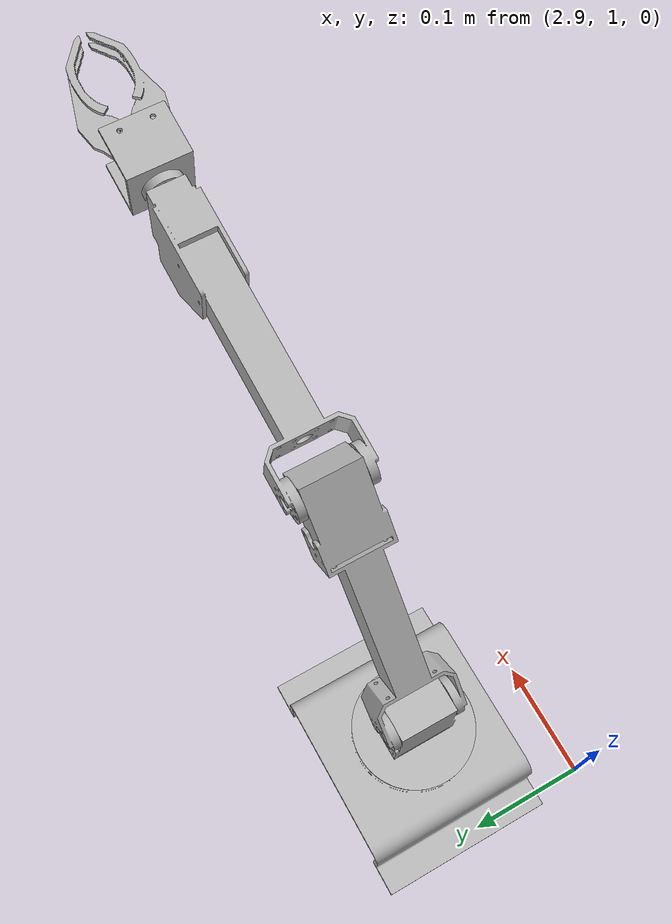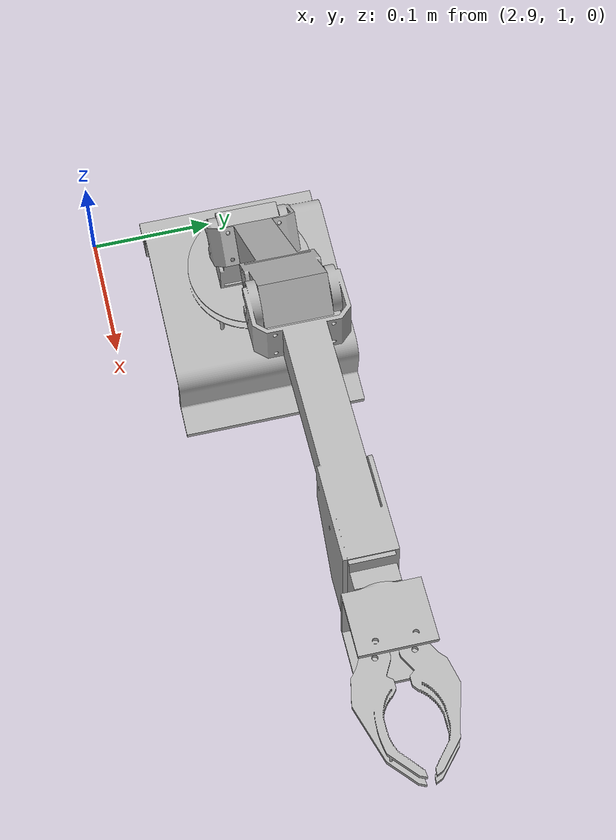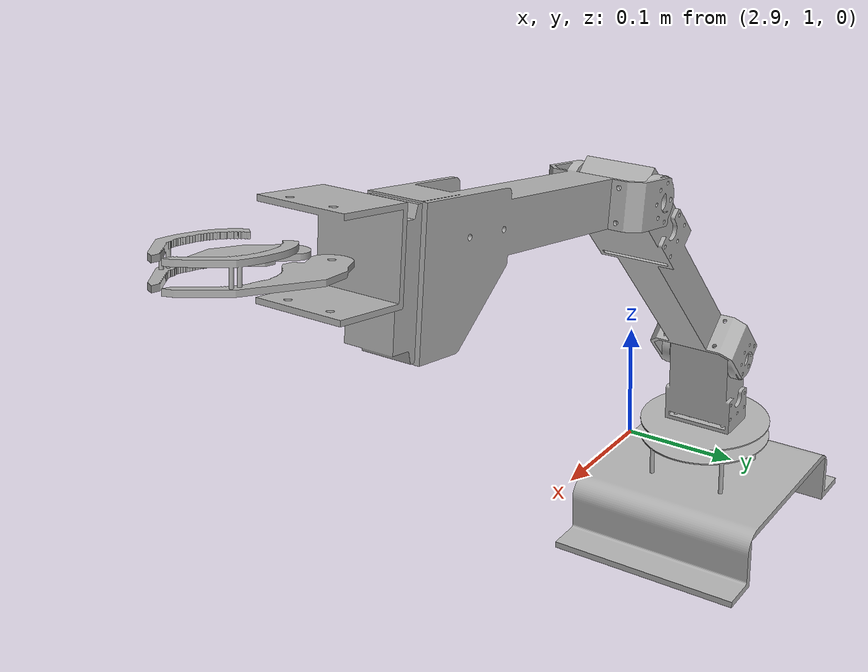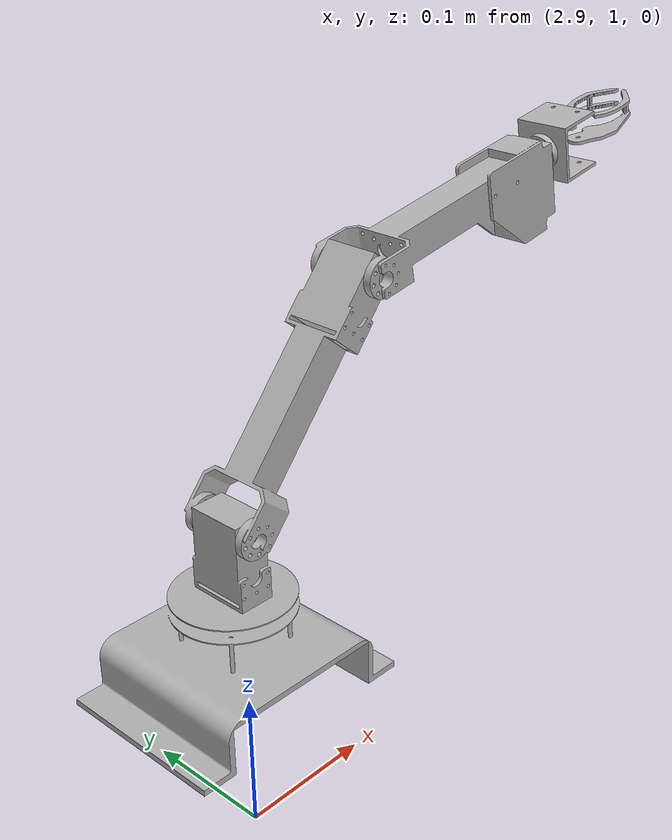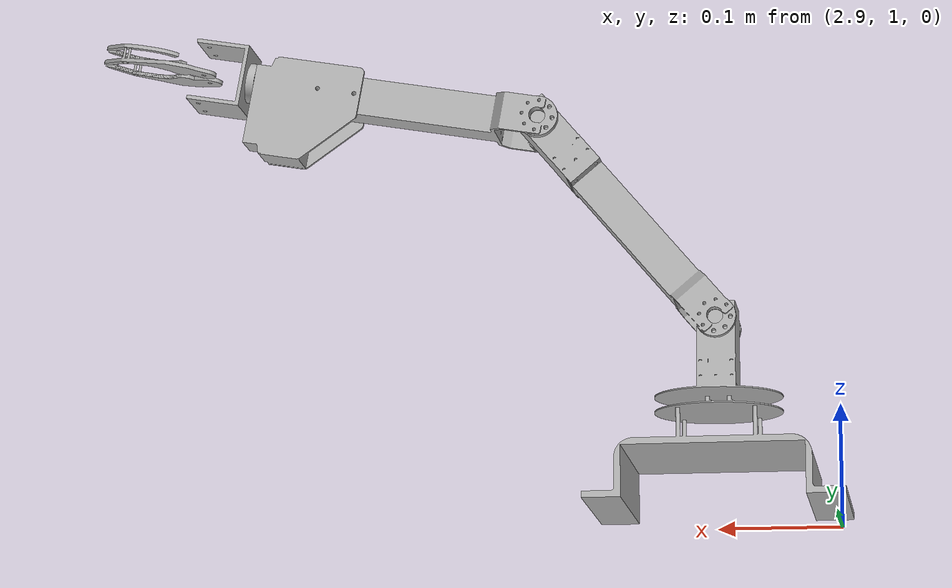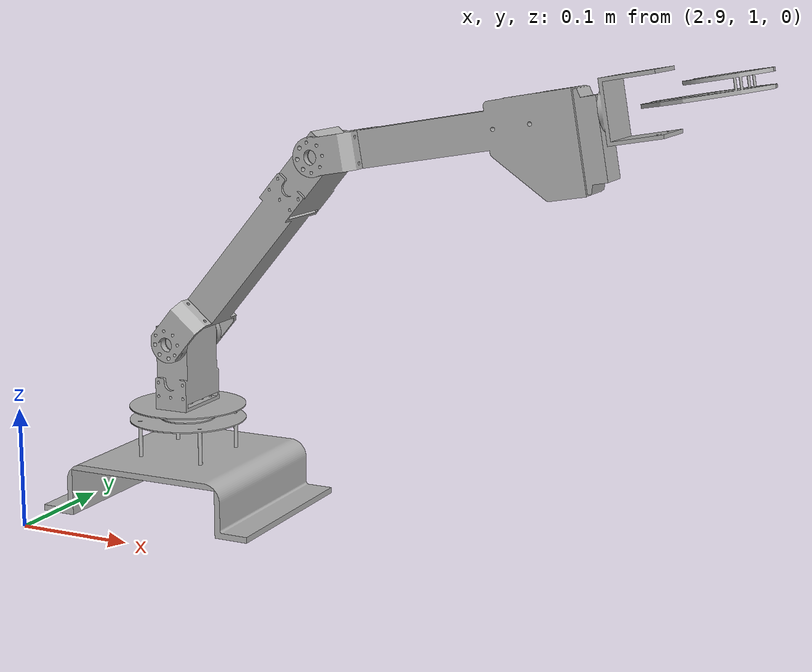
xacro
<?xml version="1.0" ?>
<robot name="angle_excurate_arm_ver2" xmlns:xacro="http://www.ros.org/wiki/xacro">

<xacro:include filename="$(find angle_excurate_arm_ver2_description)/urdf/materials.xacro" />
<xacro:include filename="$(find angle_excurate_arm_ver2_description)/urdf/angle_excurate_arm_ver2.trans" />
<xacro:include filename="$(find angle_excurate_arm_ver2_description)/urdf/angle_excurate_arm_ver2.gazebo" />
<link name="base_link">
  <inertial>
    <origin xyz="2.9893753740438394 1.116432904659099 0.029849440895135016" rpy="0 0 0"/>
    <mass value="1.6067306789990348"/>
    <inertia ixx="0.003521" iyy="0.006468" izz="0.008802" ixy="0.0" iyz="-0.0" ixz="0.0"/>
  </inertial>
  <visual>
    <origin xyz="0 0 0" rpy="0 0 0"/>
    <geometry>
      <mesh filename="package://angle_excurate_arm_ver2_description/meshes/base_link.stl" scale="0.001 0.001 0.001"/>
    </geometry>
    <material name="silver"/>
  </visual>
  <collision>
    <origin xyz="0 0 0" rpy="0 0 0"/>
    <geometry>
      <mesh filename="package://angle_excurate_arm_ver2_description/meshes/base_link.stl" scale="0.001 0.001 0.001"/>
    </geometry>
  </collision>
</link>

<link name="base_link2_v2_1">
  <inertial>
    <origin xyz="3.7404378527838844e-07 7.073274099766991e-08 0.04484445545928446" rpy="0 0 0"/>
    <mass value="0.8724221516717809"/>
    <inertia ixx="0.000636" iyy="0.000529" izz="0.000308" ixy="-0.0" iyz="0.0" ixz="-0.0"/>
  </inertial>
  <visual>
    <origin xyz="-2.989375 -1.116433 -0.075907" rpy="0 0 0"/>
    <geometry>
      <mesh filename="package://angle_excurate_arm_ver2_description/meshes/base_link2_v2_1.stl" scale="0.001 0.001 0.001"/>
    </geometry>
    <material name="silver"/>
  </visual>
  <collision>
    <origin xyz="-2.989375 -1.116433 -0.075907" rpy="0 0 0"/>
    <geometry>
      <mesh filename="package://angle_excurate_arm_ver2_description/meshes/base_link2_v2_1.stl" scale="0.001 0.001 0.001"/>
    </geometry>
  </collision>
</link>

<link name="link3_v1_1">
  <inertial>
    <origin xyz="0.08484430230025541 -1.520309589331248e-08 0.10111258233522977" rpy="0 0 0"/>
    <mass value="1.7894494256516058"/>
    <inertia ixx="0.00475" iyy="0.007559" izz="0.003484" ixy="-0.0" iyz="-0.0" ixz="-0.003589"/>
  </inertial>
  <visual>
    <origin xyz="-2.989375 -1.116433 -0.146249" rpy="0 0 0"/>
    <geometry>
      <mesh filename="package://angle_excurate_arm_ver2_description/meshes/link3_v1_1.stl" scale="0.001 0.001 0.001"/>
    </geometry>
    <material name="silver"/>
  </visual>
  <collision>
    <origin xyz="-2.989375 -1.116433 -0.146249" rpy="0 0 0"/>
    <geometry>
      <mesh filename="package://angle_excurate_arm_ver2_description/meshes/link3_v1_1.stl" scale="0.001 0.001 0.001"/>
    </geometry>
  </collision>
</link>

<link name="link4_v1_1">
  <inertial>
    <origin xyz="0.1482264138500775 -9.6959044348921e-08 0.01783008469499825" rpy="0 0 0"/>
    <mass value="2.301167222256875"/>
    <inertia ixx="0.001028" iyy="0.010731" izz="0.010331" ixy="-0.0" iyz="0.0" ixz="-0.000548"/>
  </inertial>
  <visual>
    <origin xyz="-3.127152 -1.116433 -0.310444" rpy="0 0 0"/>
    <geometry>
      <mesh filename="package://angle_excurate_arm_ver2_description/meshes/link4_v1_1.stl" scale="0.001 0.001 0.001"/>
    </geometry>
    <material name="silver"/>
  </visual>
  <collision>
    <origin xyz="-3.127152 -1.116433 -0.310444" rpy="0 0 0"/>
    <geometry>
      <mesh filename="package://angle_excurate_arm_ver2_description/meshes/link4_v1_1.stl" scale="0.001 0.001 0.001"/>
    </geometry>
  </collision>
</link>

<link name="robot_ver7_link_4_v1_1">
  <inertial>
    <origin xyz="0.01789286974697868 -9.695904212847495e-08 0.0031552779596022984" rpy="0 0 0"/>
    <mass value="0.1836674229836172"/>
    <inertia ixx="9.9e-05" iyy="0.000103" izz="7.2e-05" ixy="0.0" iyz="0.0" ixz="5e-06"/>
  </inertial>
  <visual>
    <origin xyz="-3.357435 -1.116433 -0.35257" rpy="0 0 0"/>
    <geometry>
      <mesh filename="package://angle_excurate_arm_ver2_description/meshes/robot_ver7_link_4_v1_1.stl" scale="0.001 0.001 0.001"/>
    </geometry>
    <material name="silver"/>
  </visual>
  <collision>
    <origin xyz="-3.357435 -1.116433 -0.35257" rpy="0 0 0"/>
    <geometry>
      <mesh filename="package://angle_excurate_arm_ver2_description/meshes/robot_ver7_link_4_v1_1.stl" scale="0.001 0.001 0.001"/>
    </geometry>
  </collision>
</link>

<link name="robot_ver7_grap2_2_v1_1">
  <inertial>
    <origin xyz="0.03188502329176801 -0.005587167552119965 0.008275354159303638" rpy="0 0 0"/>
    <mass value="0.04062678364092949"/>
    <inertia ixx="4e-06" iyy="2.6e-05" izz="2.5e-05" ixy="-0.0" iyz="-0.0" ixz="-6e-06"/>
  </inertial>
  <visual>
    <origin xyz="-3.398994 -1.103933 -0.359898" rpy="0 0 0"/>
    <geometry>
      <mesh filename="package://angle_excurate_arm_ver2_description/meshes/robot_ver7_grap2_2_v1_1.stl" scale="0.001 0.001 0.001"/>
    </geometry>
    <material name="silver"/>
  </visual>
  <collision>
    <origin xyz="-3.398994 -1.103933 -0.359898" rpy="0 0 0"/>
    <geometry>
      <mesh filename="package://angle_excurate_arm_ver2_description/meshes/robot_ver7_grap2_2_v1_1.stl" scale="0.001 0.001 0.001"/>
    </geometry>
  </collision>
</link>

<link name="robot_ver7_grap1_2_v1_1">
  <inertial>
    <origin xyz="0.03188502329176801 0.005586973634027714 0.008275354159306136" rpy="0 0 0"/>
    <mass value="0.040626783640931655"/>
    <inertia ixx="4e-06" iyy="2.6e-05" izz="2.5e-05" ixy="0.0" iyz="0.0" ixz="-6e-06"/>
  </inertial>
  <visual>
    <origin xyz="-3.398994 -1.128933 -0.359898" rpy="0 0 0"/>
    <geometry>
      <mesh filename="package://angle_excurate_arm_ver2_description/meshes/robot_ver7_grap1_2_v1_1.stl" scale="0.001 0.001 0.001"/>
    </geometry>
    <material name="silver"/>
  </visual>
  <collision>
    <origin xyz="-3.398994 -1.128933 -0.359898" rpy="0 0 0"/>
    <geometry>
      <mesh filename="package://angle_excurate_arm_ver2_description/meshes/robot_ver7_grap1_2_v1_1.stl" scale="0.001 0.001 0.001"/>
    </geometry>
  </collision>
</link>

<joint name="Revolute 1" type="revolute">
  <origin xyz="2.989375 1.116433 0.075907" rpy="0 0 0"/>
  <parent link="base_link"/>
  <child link="base_link2_v2_1"/>
  <axis xyz="-0.0 -0.0 1.0"/>
  <limit upper="3.141593" lower="0.0" effort="100" velocity="100"/>
</joint>

<joint name="Revolute 2" type="revolute">
  <origin xyz="0.0 0.0 0.070342" rpy="0 0 0"/>
  <parent link="base_link2_v2_1"/>
  <child link="link3_v1_1"/>
  <axis xyz="-0.0 -1.0 -0.0"/>
  <limit upper="2.094395" lower="0.0" effort="100" velocity="100"/>
</joint>

<joint name="Revolute 3" type="revolute">
  <origin xyz="0.137777 0.0 0.164195" rpy="0 0 0"/>
  <parent link="link3_v1_1"/>
  <child link="link4_v1_1"/>
  <axis xyz="-0.0 -1.0 -0.0"/>
  <limit upper="2.617994" lower="0.0" effort="100" velocity="100"/>
</joint>

<joint name="Revolute 4" type="revolute">
  <origin xyz="0.230283 0.0 0.042126" rpy="0 0 0"/>
  <parent link="link4_v1_1"/>
  <child link="robot_ver7_link_4_v1_1"/>
  <axis xyz="0.984808 -0.0 0.173648"/>
  <limit upper="3.141593" lower="0.0" effort="100" velocity="100"/>
</joint>

<joint name="Revolute 5" type="revolute">
  <origin xyz="0.041559 -0.0125 0.007328" rpy="0 0 0"/>
  <parent link="robot_ver7_link_4_v1_1"/>
  <child link="robot_ver7_grap2_2_v1_1"/>
  <axis xyz="0.173648 0.0 -0.984808"/>
  <limit upper="1.22173" lower="0.0" effort="100" velocity="100"/>
</joint>

<joint name="Revolute 6" type="revolute">
  <origin xyz="0.041559 0.0125 0.007328" rpy="0 0 0"/>
  <parent link="robot_ver7_link_4_v1_1"/>
  <child link="robot_ver7_grap1_2_v1_1"/>
  <axis xyz="-0.173648 -0.0 0.984808"/>
  <limit upper="1.22173" lower="0.0" effort="100" velocity="100"/>
  <mimic joint="Revolute 5" multiplier="-1.0"/>  <!-- multiplier設定為-1.0表示反向模仿 -->
</joint>

</robot>

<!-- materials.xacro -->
<robot name="angle_excurate_arm_ver2" xmlns:xacro="http://www.ros.org/wiki/xacro" >

<material name="silver">
  <color rgba="0.700 0.700 0.700 1.000"/>
</material>

</robot>

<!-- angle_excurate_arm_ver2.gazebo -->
<robot name="angle_excurate_arm_ver2" xmlns:xacro="http://www.ros.org/wiki/xacro" >

<xacro:property name="body_color" value="Gazebo/Silver" />

<gazebo>
  <plugin name="control" filename="libgazebo_ros_control.so"/>
</gazebo>
<gazebo reference="base_link">
  <material>${body_color}</material>
  <mu1>0.2</mu1>
  <mu2>0.2</mu2>
  <selfCollide>true</selfCollide>
  <gravity>true</gravity>
</gazebo>

<gazebo reference="base_link2_v2_1">
  <material>${body_color}</material>
  <mu1>0.2</mu1>
  <mu2>0.2</mu2>
  <selfCollide>true</selfCollide>
</gazebo>

<gazebo reference="link3_v1_1">
  <material>${body_color}</material>
  <mu1>0.2</mu1>
  <mu2>0.2</mu2>
  <selfCollide>true</selfCollide>
</gazebo>

<gazebo reference="link4_v1_1">
  <material>${body_color}</material>
  <mu1>0.2</mu1>
  <mu2>0.2</mu2>
  <selfCollide>true</selfCollide>
</gazebo>

<gazebo reference="robot_ver7_link_4_v1_1">
  <material>${body_color}</material>
  <mu1>0.2</mu1>
  <mu2>0.2</mu2>
  <selfCollide>true</selfCollide>
</gazebo>

<gazebo reference="robot_ver7_grap2_2_v1_1">
  <material>${body_color}</material>
  <mu1>0.2</mu1>
  <mu2>0.2</mu2>
  <selfCollide>true</selfCollide>
</gazebo>

<gazebo reference="robot_ver7_grap1_2_v1_1">
  <material>${body_color}</material>
  <mu1>0.2</mu1>
  <mu2>0.2</mu2>
  <selfCollide>true</selfCollide>
</gazebo>

</robot>
